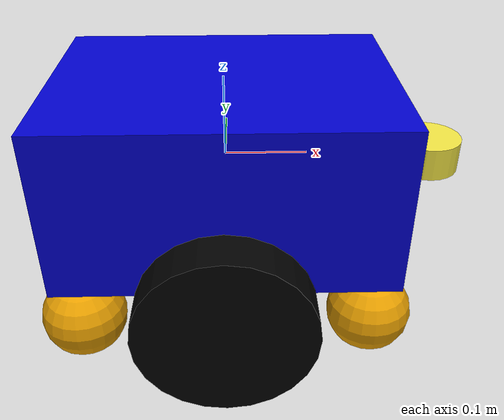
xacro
<?xml version="1.0"?>
<robot name="diff_robot" xmlns:xacro="http://ros.org/wiki/xacro">

  <xacro:property name="body_width" value="0.3" /> <!-- x-len, y-width, z-height-->
  <xacro:property name="body_len" value="0.4" />
  <xacro:property name="body_height" value="0.2" />
  <xacro:property name="wheeldiam" value="0.2" />
  <xacro:property name="caster_wheeldiam" value="0.1" />
  <xacro:property name="pi" value="3.1415" />
  <xacro:property name="damping_value" value="1"/>
  <xacro:property name="friction_value" value = "0.1"/>
  <xacro:property name="castor_z" value = "${-1*body_height/2-caster_wheeldiam/2}"/> <!-- all defined values are for forward left casters -->
  <xacro:property name="castor_y" value = "${body_width/2-.03}"/>
  <xacro:property name="castor_x" value = "${body_len/2-.03}"/>

  <material name="blue">
    <color rgba="0 0 0.8 1"/>
  </material>

  <material name="black">
    <color rgba="0 0 0 1"/>
  </material>

  <material name="white">
    <color rgba="1 1 1 1"/>
  </material>

  <xacro:macro name="default_inertial" params="mass">
    <inertial>
      <mass value="${mass}" />
      <origin rpy="0  0  0" xyz="0     0     -0.2"/>

<inertia ixx="3.48098791" ixy="-0.02343362" ixz="0.04811861" iyy="5.19078888" iyz="-0.02384589" izz="6.88688694"/>

    </inertial>
  </xacro:macro>

  <link name="base_link">
    <xacro:default_inertial mass="85"/>

    <visual>
     <origin xyz="0 0 0.0" rpy="0 0 0"/>
      <geometry>
         <box size="${body_len} ${body_width} ${body_height}"/>
      </geometry>
      <material name="blue"/>
    </visual>

    <collision>
      <origin xyz="0 0 0.0" rpy="0 0 0"/>
      <geometry>
         <box size="${body_len} ${body_width} ${body_height}"/>
      </geometry>
    </collision>
    <collision name="caster_collision_fl">
      <origin rpy="0  0  0" xyz="${castor_x}  ${castor_y}  ${castor_z}"/>
      <geometry>
        <sphere radius="${caster_wheeldiam/2}"/>
      </geometry>
      <surface>
        <friction>
          <ode>
            <mu>0</mu>
            <mu2>0</mu2>
            <slip1>1.0</slip1>
            <slip2>1.0</slip2>
          </ode>
        </friction>
      </surface>
    </collision>
    <collision name="caster_collision_fr">
      <origin rpy="0  0  0" xyz="${castor_x} ${castor_y*-1}  ${castor_z}"/>
      <geometry>
        <sphere radius="${caster_wheeldiam/2}"/>
      </geometry>
      <surface>
        <friction>
          <ode>
            <mu>0</mu>
            <mu2>0</mu2>
            <slip1>1.0</slip1>
            <slip2>1.0</slip2>
          </ode>
        </friction>
      </surface>
    </collision>
    <collision name="caster_collision_bl">
      <origin rpy="0  0  0" xyz="${castor_x*-1} ${castor_y}  ${castor_z}"/>
      <geometry>
        <sphere radius="${caster_wheeldiam/2}"/>
      </geometry>
      <surface>
        <friction>
          <ode>
            <mu>0</mu>
            <mu2>0</mu2>
            <slip1>1.0</slip1>
            <slip2>1.0</slip2>
          </ode>
        </friction>
      </surface>
    </collision>
    <collision name="caster_collision_br">
      <origin rpy="0  0  0" xyz="${castor_x*-1} ${castor_y*-1}  ${castor_z}"/>
      <geometry>
        <sphere radius="${caster_wheeldiam/2}"/>
      </geometry>
      <surface>
        <friction>
          <ode>
            <mu>0</mu>
            <mu2>0</mu2>
            <slip1>1.0</slip1>
            <slip2>1.0</slip2>
          </ode>
        </friction>
      </surface>
    </collision>
     <visual name="caster_visual_fl">
      <origin rpy="0  0  0" xyz="${castor_x} ${castor_y}  ${castor_z}"/>
      <geometry>
        <sphere radius="${caster_wheeldiam/2}"/>
      </geometry>
    </visual>
    <visual name="caster_visual_fr">
      <origin rpy="0  0  0" xyz="${castor_x} ${castor_y*-1}  ${castor_z}"/>
      <geometry>
        <sphere radius="${caster_wheeldiam/2}"/>
      </geometry>
    </visual>
    <visual name="caster_visual_bl">
      <origin rpy="0  0  0" xyz="${castor_x*-1} ${castor_y}  ${castor_z}"/>
      <geometry>
        <sphere radius="${caster_wheeldiam/2}"/>
      </geometry>
    </visual>
    <visual name="caster_visual_br">
      <origin rpy="0  0  0" xyz="${castor_x*-1} ${castor_y*-1}  ${castor_z}"/>
      <geometry>
        <sphere radius="${caster_wheeldiam/2}"/>
      </geometry>
    </visual>
    </link>

  <xacro:macro name="wheel" params="prefix reflect">

    <link name="${prefix}_wheel">
       <inertial>
        <mass value="2.637" />
        <origin xyz="0 0 0" />
      <inertia  ixx="0.02467" ixy="0" ixz="0" iyy="0.04411" iyz="0" izz="0.02467" />
      </inertial>
      <visual>
        <origin xyz="0 0 0" rpy="${pi/2} 0 0" />
        <geometry>
          <cylinder radius="${wheeldiam/2}" length="0.05"/>
        </geometry>
        <material name="black"/>
      </visual>
      <collision>
        <origin xyz="0 0 0" rpy="${pi/2} 0 0" />
        <geometry>
          <cylinder radius="${wheeldiam/2}" length="0.05"/>
        </geometry>

      </collision>
      </link>
     <joint name="${prefix}_wheel_joint" type="continuous">
      <axis xyz="0 1 0" rpy="0 0 0" />
      <parent link="base_link"/>
      <child link="${prefix}_wheel"/>
      <origin xyz="0 ${reflect*0.05+body_width/2*reflect} -${body_height/2+0.0001}" rpy="0 0 0"/>

    </joint>

    <!-- This block provides the simulator (Gazebo) with information on a few additional
    physical properties. See http://gazebosim.org/tutorials/?tut=ros_urdf for more-->
    <gazebo reference="${prefix}_wheel">
      <mu1 value="1.0"/>
      <mu2 value="1.0"/>
      <kp value="10000000.0" />
      <kd value="1.0" />
      <material>Gazebo/Grey</material>
    </gazebo>

    <!-- This block connects the wheel joint to an actuator (motor), which informs both
    simulation and visualization of the robot -->
    <transmission name="${prefix}_wheel_trans">
      <type>transmission_interface/SimpleTransmission</type>
      <actuator name="${prefix}_wheel_motor">
        <mechanicalReduction>1</mechanicalReduction>
      </actuator>
      <joint name="${prefix}_wheel_joint">
        <hardwareInterface>VelocityJointInterface</hardwareInterface>
      </joint>
    </transmission>

  </xacro:macro>
  <xacro:wheel prefix="left" reflect="1"/>
  <xacro:wheel prefix="right" reflect="-1"/>
  <link name="laser">
    <inertial>
      <mass value="0"/>
      <origin rpy="0  0  0" xyz="0  0  0"/>
      <inertia ixx="0" ixy="0" ixz="0" iyy="0" iyz="0" izz="0"/>
    </inertial>
    <collision name="collision_laser">
      <origin rpy="0  0  0" xyz="0  0  0"/>
      <geometry>
        <cylinder length="0.04" radius="0.04"/>
      </geometry>
    </collision>
    <visual name="visual_laser">
      <origin rpy="0  0  0" xyz="0  0  0"/>
      <geometry>
        <cylinder length="0.04" radius="0.04"/>
      </geometry>
    </visual>
  </link>

   <joint name="laser_joint" type="fixed">
    <parent link="base_link"/>
    <child link="laser"/>
    <origin rpy="0  0  0" xyz="${body_len/2+.05}  0  ${body_height/2-0.1}"/>
    <axis xyz="0  0  0"/>
    <limit effort="0" lower="0" upper="0" velocity="0"/>
  </joint>
  <!-- Gazebo plugin for ROS Control -->
  <gazebo>
    <plugin name="differential_drive_controller" filename="libgazebo_ros_diff_drive.so">
      <legacyMode>false</legacyMode>
      <alwaysOn>true</alwaysOn>
      <updateRate>50</updateRate>
      <leftJoint>left_wheel_joint</leftJoint>
      <rightJoint>right_wheel_joint</rightJoint>
      <wheelSeparation>0.4</wheelSeparation>
      <wheelDiameter>${wheeldiam}</wheelDiameter>
      <wheelTorque>10</wheelTorque>
      <commandTopic>cmd_vel</commandTopic>
      <odometryTopic>odom</odometryTopic>
      <odometryFrame>odom</odometryFrame>
      <robotBaseFrame>base_link</robotBaseFrame>
    </plugin>
  </gazebo>

    <gazebo reference="laser">
    <sensor type="ray" name="laser">
      <pose>0 0 0 0 0 0</pose>
      <visualize>true</visualize>
      <update_rate>40</update_rate>
      <ray>
        <scan>
          <horizontal>
            <samples>720</samples>
            <resolution>1</resolution>
            <min_angle>-1.75</min_angle>
            <max_angle>1.75</max_angle>
          </horizontal>
        </scan>
        <range>
          <min>0.10</min>
          <max>20.0</max>
          <resolution>0.01</resolution>
        </range>
           </ray>
           <plugin name="gazebo_ros_laser_controller" filename="libgazebo_ros_laser.so">
            <topicName>/scan</topicName>
            <frameName>laser</frameName>
          </plugin>
        </sensor>
      </gazebo>

</robot>
